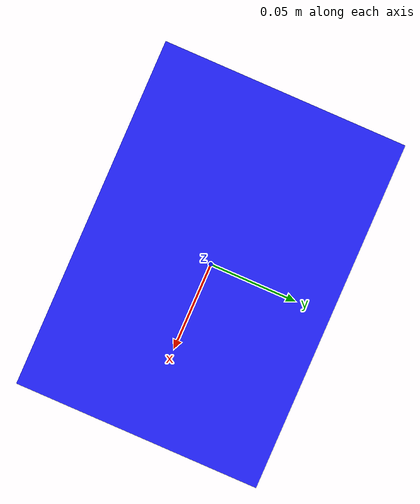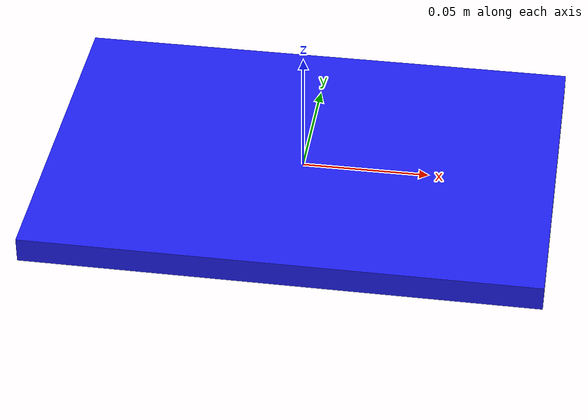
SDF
<?xml version="1.0"?>
<sdf version="1.9">
  <model name="trash_paper_01"><static>true</static><link name="link">
    <visual name="visual"><geometry><box><size>0.20 0.14 0.01</size></box></geometry><material><ambient>0.12 0.12 0.90 1</ambient><diffuse>0.12 0.12 0.95 1</diffuse></material></visual>
    <collision name="collision"><geometry><box><size>0.20 0.14 0.01</size></box></geometry></collision>
  </link></model>
</sdf>
